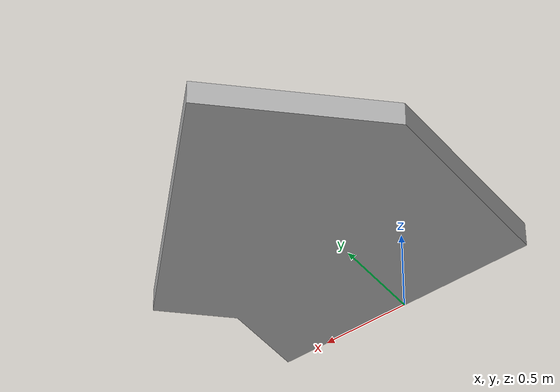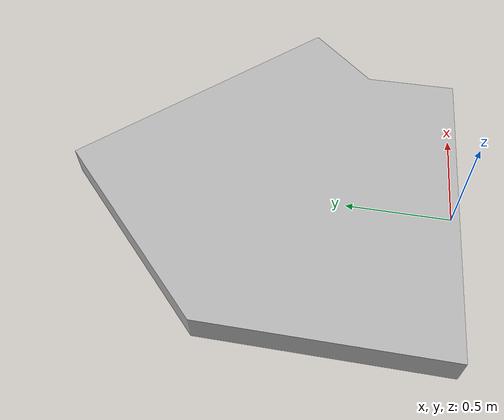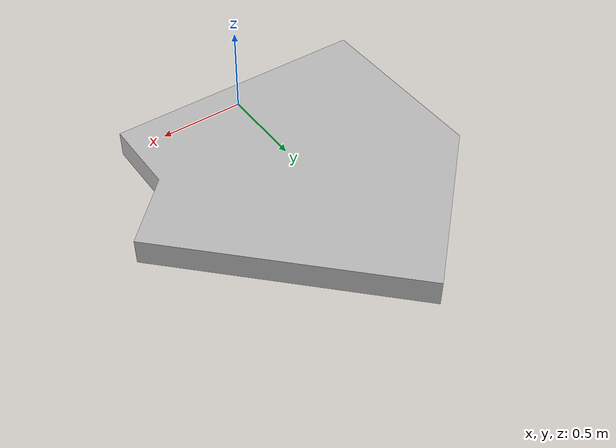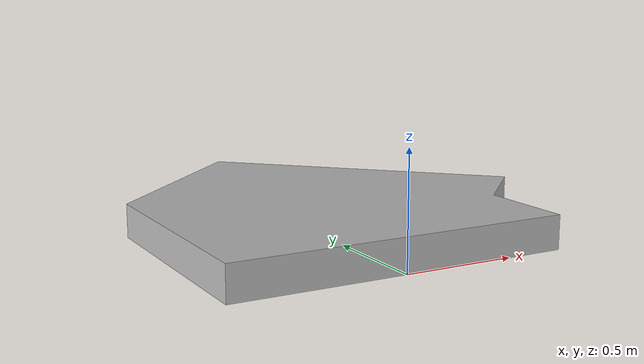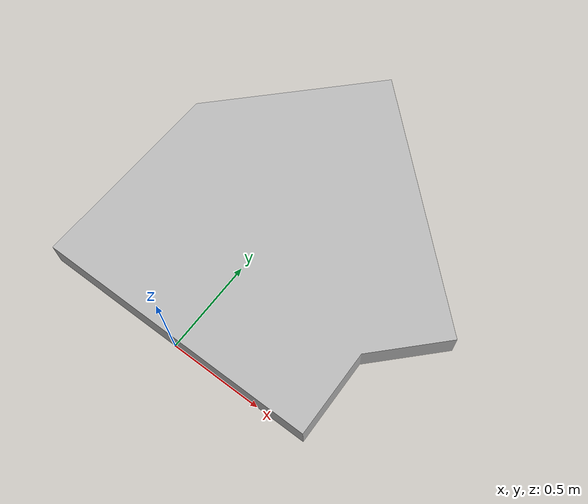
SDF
<?xml version="1.0" ?>
<sdf version="1.6">
  <model name="walkway_metal_45">
    <static>true</static>
    <link name="link">
      <collision name="collision">
        <pose>0 0.538815 0.076075 0 0 0</pose>
        <geometry>
          <box>
            <size>1.524 1.07763 0.15215</size>
          </box>
        </geometry>
      </collision>

      <collision name="collision2">
        <pose>0.15793 0.92 0.076075 0 0 -0.785398</pose>
        <geometry>
          <box>
            <size>1.524 1.07763 0.15215</size>
          </box>
        </geometry>
      </collision>

      <visual name="visual">
         <geometry>
           <mesh>
             <scale>0.001 0.001 0.001</scale>
             <uri>model://walkway_metal_45/meshes/mesh.obj</uri>
           </mesh>
         </geometry>
       </visual>
    </link>
  </model>
</sdf>
